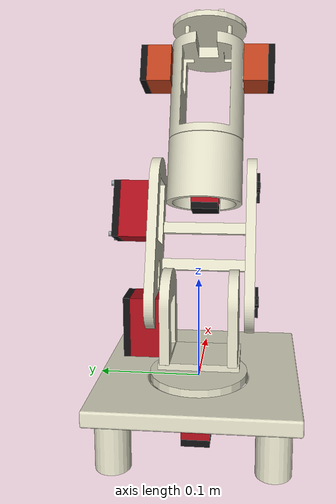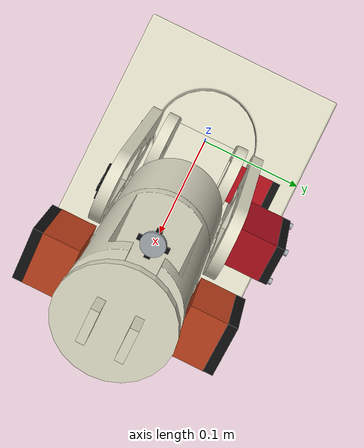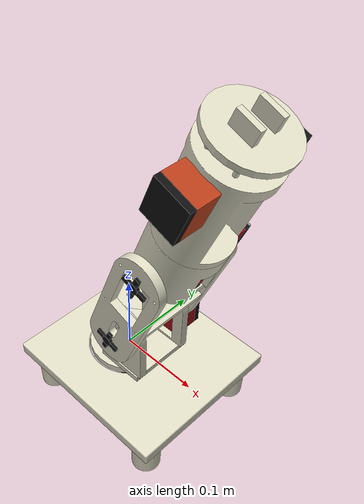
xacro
<?xml version="1.0"?>
<robot xmlns:xacro="http://www.ros.org/wiki/xacro" name="waybionic_old_arm_visualization">
  <xacro:arg name="base_height" default="0.070"/>
  <xacro:arg name="shoulder_offset" default="0.025"/>
  <xacro:arg name="upper_arm_length" default="0.120"/>
  <xacro:arg name="forearm_length" default="0.050"/>
  <xacro:arg name="tool_inline" default="0.0"/>
  <xacro:arg name="base_zero_degrees" default="90.0"/>
  <xacro:arg name="shoulder_zero_degrees" default="125.0"/>
  <xacro:arg name="elbow_zero_degrees" default="151.5"/>
  <xacro:arg name="base_direction" default="1"/>
  <xacro:arg name="shoulder_direction" default="-1"/>
  <xacro:arg name="elbow_direction" default="1"/>
  <xacro:arg name="wrist_reference_degrees" default="27.5"/>
  <xacro:arg name="wrist_direction" default="1"/>

  <xacro:property name="base_height_m" value="$(arg base_height)"/>
  <xacro:property name="shoulder_offset_m" value="$(arg shoulder_offset)"/>
  <xacro:property name="upper_length_m" value="$(arg upper_arm_length)"/>
  <xacro:property name="forearm_length_m" value="$(arg forearm_length)"/>

  <material name="old_arm_print"><color rgba="0.86 0.85 0.76 1"/></material>
  <material name="old_arm_servo"><color rgba="0.65 0.045 0.09 1"/></material>
  <material name="old_arm_distal_servo"><color rgba="0.72 0.24 0.10 1"/></material>
  <material name="old_arm_cover"><color rgba="0.055 0.055 0.06 1"/></material>
  <material name="old_arm_metal"><color rgba="0.62 0.65 0.67 1"/></material>

  <xacro:macro name="visual_box" params="size xyz material rpy:='0 0 0'">
    <visual>
      <origin xyz="${xyz}" rpy="${rpy}"/>
      <geometry><box size="${size}"/></geometry>
      <material name="${material}"/>
    </visual>
  </xacro:macro>

  <xacro:macro name="visual_cylinder" params="radius length xyz material rpy:='0 0 0'">
    <visual>
      <origin xyz="${xyz}" rpy="${rpy}"/>
      <geometry><cylinder radius="${radius}" length="${length}"/></geometry>
      <material name="${material}"/>
    </visual>
  </xacro:macro>

  <xacro:macro name="printed_mesh" params="name xyz:='0 0 0' scale:='1 1 1'">
    <visual>
      <origin xyz="${xyz}"/>
      <geometry>
        <mesh filename="package://waybionic_description/meshes/old_arm/${name}.stl" scale="${scale}"/>
      </geometry>
      <material name="old_arm_print"/>
    </visual>
  </xacro:macro>

  <xacro:macro name="colored_box_link" params="name parent size xyz material">
    <joint name="${name}_mount" type="fixed">
      <parent link="${parent}"/>
      <child link="${name}"/>
      <origin xyz="${xyz}"/>
    </joint>
    <link name="${name}">
      <xacro:visual_box size="${size}" xyz="0 0 0" material="${material}"/>
    </link>
  </xacro:macro>

  <xacro:macro name="display_limits" params="minimum maximum zero direction">
    <xacro:property name="first_endpoint" value="${radians((minimum - zero) / direction)}"/>
    <xacro:property name="second_endpoint" value="${radians((maximum - zero) / direction)}"/>
    <limit lower="${min(first_endpoint, second_endpoint)}"
      upper="${max(first_endpoint, second_endpoint)}" effort="0" velocity="0"/>
  </xacro:macro>

  <xacro:macro name="pitch_horn" params="name parent xyz">
    <joint name="${name}_mount" type="fixed">
      <parent link="${parent}"/>
      <child link="${name}"/>
      <origin xyz="${xyz}"/>
    </joint>
    <link name="${name}">
      <xacro:visual_box size="0.031 0.003 0.006" xyz="0 0 0" material="old_arm_cover"/>
      <xacro:visual_box size="0.006 0.003 0.031" xyz="0 0 0" material="old_arm_cover"/>
      <xacro:visual_cylinder radius="0.006" length="0.004" xyz="0 0 0"
        rpy="${pi / 2} 0 0" material="old_arm_cover"/>
    </link>
  </xacro:macro>

  <xacro:macro name="servo_screws" params="name parent along lateral half_length half_width">
    <joint name="${name}_mount" type="fixed">
      <parent link="${parent}"/>
      <child link="${name}"/>
    </joint>
    <link name="${name}">
      <xacro:visual_cylinder radius="0.0025" length="0.003"
        xyz="${along - half_length} ${lateral} ${-half_width}"
        rpy="${pi / 2} 0 0" material="old_arm_metal"/>
      <xacro:visual_cylinder radius="0.0025" length="0.003"
        xyz="${along + half_length} ${lateral} ${-half_width}"
        rpy="${pi / 2} 0 0" material="old_arm_metal"/>
      <xacro:visual_cylinder radius="0.0025" length="0.003"
        xyz="${along - half_length} ${lateral} ${half_width}"
        rpy="${pi / 2} 0 0" material="old_arm_metal"/>
      <xacro:visual_cylinder radius="0.0025" length="0.003"
        xyz="${along + half_length} ${lateral} ${half_width}"
        rpy="${pi / 2} 0 0" material="old_arm_metal"/>
    </link>
  </xacro:macro>

  <link name="old_arm_base_link">
    <xacro:printed_mesh name="base_plate"/>
    <xacro:visual_cylinder radius="0.017" length="0.050"
      xyz="-0.065 -0.075 -0.041" material="old_arm_print"/>
    <xacro:visual_cylinder radius="0.017" length="0.050"
      xyz="-0.065 0.075 -0.041" material="old_arm_print"/>
    <xacro:visual_cylinder radius="0.017" length="0.050"
      xyz="0.105 -0.075 -0.041" material="old_arm_print"/>
    <xacro:visual_cylinder radius="0.017" length="0.050"
      xyz="0.105 0.075 -0.041" material="old_arm_print"/>
  </link>

  <xacro:colored_box_link name="old_arm_base_servo_body" parent="old_arm_base_link"
    size="0.056 0.028 0.038" xyz="-0.012 0 -0.031" material="old_arm_servo"/>
  <xacro:colored_box_link name="old_arm_base_servo_cover" parent="old_arm_base_link"
    size="0.056 0.028 0.007" xyz="-0.012 0 -0.0535" material="old_arm_cover"/>

  <joint name="old_arm_base_yaw_joint" type="revolute">
    <parent link="old_arm_base_link"/>
    <child link="old_arm_shoulder_mount"/>
    <axis xyz="0 0 1"/>
    <xacro:display_limits minimum="0.0" maximum="270.0"
      zero="$(arg base_zero_degrees)" direction="$(arg base_direction)"/>
  </joint>

  <link name="old_arm_shoulder_mount">
    <xacro:visual_cylinder radius="0.049" length="0.008"
      xyz="0 0 0.002" material="old_arm_print"/>
    <xacro:visual_box size="0.060 0.082 0.007"
      xyz="${shoulder_offset_m} 0 0.0095" material="old_arm_print"/>
    <xacro:printed_mesh name="shoulder_motor_plate"
      xyz="${shoulder_offset_m} 0.034 ${base_height_m}"
      scale="1 1 ${(base_height_m - 0.012) / 0.058}"/>
    <xacro:printed_mesh name="shoulder_back_plate"
      xyz="${shoulder_offset_m} -0.034 ${base_height_m}"
      scale="1 1 ${(base_height_m - 0.012) / 0.058}"/>
  </link>

  <xacro:colored_box_link name="old_arm_shoulder_servo_body" parent="old_arm_shoulder_mount"
    size="0.035 0.034 0.062" xyz="${shoulder_offset_m} 0.054 ${base_height_m - 0.025}"
    material="old_arm_servo"/>
  <xacro:colored_box_link name="old_arm_shoulder_servo_cover" parent="old_arm_shoulder_mount"
    size="0.035 0.007 0.062" xyz="${shoulder_offset_m} 0.0745 ${base_height_m - 0.025}"
    material="old_arm_cover"/>

  <joint name="old_arm_shoulder_pitch_joint" type="revolute">
    <parent link="old_arm_shoulder_mount"/>
    <child link="old_arm_upper_arm"/>
    <origin xyz="${shoulder_offset_m} 0 ${base_height_m}"/>
    <axis xyz="0 -1 0"/>
    <xacro:display_limits minimum="0.0" maximum="112.5"
      zero="$(arg shoulder_zero_degrees)" direction="$(arg shoulder_direction)"/>
  </joint>

  <link name="old_arm_upper_arm">
    <xacro:printed_mesh name="upper_arm_plate" xyz="0 -0.050 0"
      scale="${upper_length_m / 0.120} 1 1"/>
    <xacro:printed_mesh name="upper_arm_plate" xyz="0 0.050 0"
      scale="${upper_length_m / 0.120} 1 1"/>
    <xacro:visual_box size="0.012 0.095 0.008"
      xyz="${upper_length_m / 3} 0 -0.026" material="old_arm_print"/>
    <xacro:visual_box size="0.012 0.095 0.008"
      xyz="${upper_length_m * 2 / 3} 0 -0.026" material="old_arm_print"/>
  </link>

  <xacro:pitch_horn name="old_arm_shoulder_horn" parent="old_arm_upper_arm" xyz="0 -0.057 0"/>
  <xacro:colored_box_link name="old_arm_elbow_servo_body" parent="old_arm_upper_arm"
    size="0.060 0.034 0.034" xyz="${upper_length_m - 0.027} 0.070 0"
    material="old_arm_servo"/>
  <xacro:colored_box_link name="old_arm_elbow_servo_cover" parent="old_arm_upper_arm"
    size="0.060 0.007 0.034" xyz="${upper_length_m - 0.027} 0.0905 0"
    material="old_arm_cover"/>
  <xacro:servo_screws name="old_arm_elbow_cover_screws" parent="old_arm_upper_arm"
    along="${upper_length_m - 0.027}" lateral="0.0955" half_length="0.027" half_width="0.014"/>

  <joint name="old_arm_elbow_pitch_joint" type="revolute">
    <parent link="old_arm_upper_arm"/>
    <child link="old_arm_forearm"/>
    <origin xyz="${upper_length_m} 0 0"/>
    <axis xyz="0 -1 0"/>
    <xacro:display_limits minimum="90.0" maximum="270.0"
      zero="$(arg elbow_zero_degrees)" direction="$(arg elbow_direction)"/>
  </joint>

  <link name="old_arm_forearm">
    <xacro:printed_mesh name="wrist_housing" scale="${forearm_length_m / 0.050} 1 1"/>
  </link>

  <xacro:pitch_horn name="old_arm_elbow_horn" parent="old_arm_forearm" xyz="0 -0.057 0"/>
  <xacro:colored_box_link name="old_arm_wrist_servo_body" parent="old_arm_forearm"
    size="0.043 0.029 0.029" xyz="${forearm_length_m - 0.044} 0 -0.016"
    material="old_arm_servo"/>
  <xacro:colored_box_link name="old_arm_wrist_servo_cover" parent="old_arm_forearm"
    size="0.007 0.029 0.029" xyz="${forearm_length_m - 0.069} 0 -0.016"
    material="old_arm_cover"/>

  <joint name="old_arm_wrist_roll_joint" type="revolute">
    <parent link="old_arm_forearm"/>
    <child link="old_arm_wrist_roll"/>
    <origin xyz="${forearm_length_m} 0 0"/>
    <axis xyz="1 0 0"/>
    <xacro:display_limits minimum="0.0" maximum="270.0"
      zero="$(arg wrist_reference_degrees)" direction="$(arg wrist_direction)"/>
  </joint>

  <link name="old_arm_wrist_roll">
    <xacro:printed_mesh name="wrist_cage"/>
    <xacro:visual_cylinder radius="0.041" length="0.006"
      xyz="0.129 0 0" rpy="0 ${pi / 2} 0" material="old_arm_print"/>
    <xacro:visual_cylinder radius="0.0025" length="0.020"
      xyz="0.118 -0.023 -0.015" rpy="0 ${pi / 2} 0" material="old_arm_print"/>
    <xacro:visual_cylinder radius="0.0025" length="0.020"
      xyz="0.118 0.023 -0.015" rpy="0 ${pi / 2} 0" material="old_arm_print"/>
    <xacro:visual_cylinder radius="0.0025" length="0.020"
      xyz="0.118 -0.023 0.015" rpy="0 ${pi / 2} 0" material="old_arm_print"/>
    <xacro:visual_cylinder radius="0.0025" length="0.020"
      xyz="0.118 0.023 0.015" rpy="0 ${pi / 2} 0" material="old_arm_print"/>
    <xacro:visual_box size="0.017 0.006 0.025" xyz="0.139 -0.013 0" material="old_arm_print"/>
    <xacro:visual_box size="0.017 0.006 0.025" xyz="0.139 0.013 0" material="old_arm_print"/>
  </link>

  <xacro:colored_box_link name="old_arm_distal_left_servo" parent="old_arm_wrist_roll"
    size="0.041 0.026 0.039" xyz="0.083 0.052 0" material="old_arm_distal_servo"/>
  <xacro:colored_box_link name="old_arm_distal_right_servo" parent="old_arm_wrist_roll"
    size="0.041 0.026 0.039" xyz="0.083 -0.052 0" material="old_arm_distal_servo"/>
  <xacro:colored_box_link name="old_arm_distal_left_cover" parent="old_arm_distal_left_servo"
    size="0.041 0.007 0.039" xyz="0 0.0165 0" material="old_arm_cover"/>
  <xacro:colored_box_link name="old_arm_distal_right_cover" parent="old_arm_distal_right_servo"
    size="0.041 0.007 0.039" xyz="0 -0.0165 0" material="old_arm_cover"/>
  <xacro:colored_box_link name="old_arm_wrist_marker" parent="old_arm_wrist_roll"
    size="0.002 0.026 0.005" xyz="0.009 0 0" material="old_arm_cover"/>
  <xacro:colored_box_link name="old_arm_wrist_marker_cross" parent="old_arm_wrist_roll"
    size="0.002 0.005 0.026" xyz="0.009 0 0" material="old_arm_cover"/>
  <joint name="old_arm_wrist_hub_mount" type="fixed">
    <parent link="old_arm_wrist_roll"/>
    <child link="old_arm_wrist_hub"/>
  </joint>
  <link name="old_arm_wrist_hub">
    <xacro:visual_cylinder radius="0.010" length="0.012"
      xyz="0.006 0 0" rpy="0 ${pi / 2} 0" material="old_arm_metal"/>
  </link>

  <joint name="old_arm_tool_joint" type="fixed">
    <parent link="old_arm_wrist_roll"/>
    <child link="old_arm_tool_frame"/>
    <origin xyz="$(arg tool_inline) 0 0"/>
  </joint>
  <link name="old_arm_tool_frame"/>
</robot>
